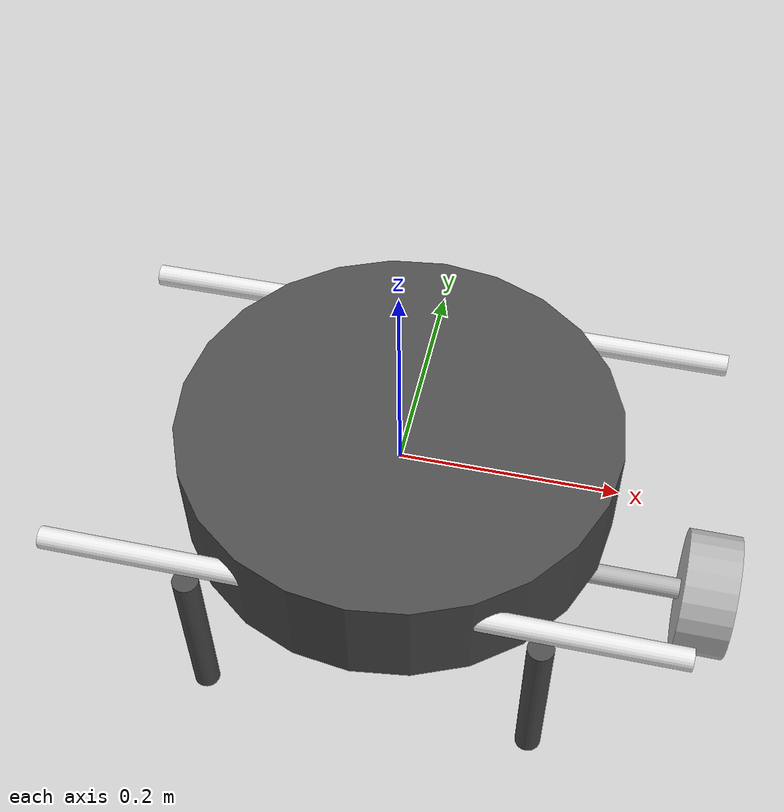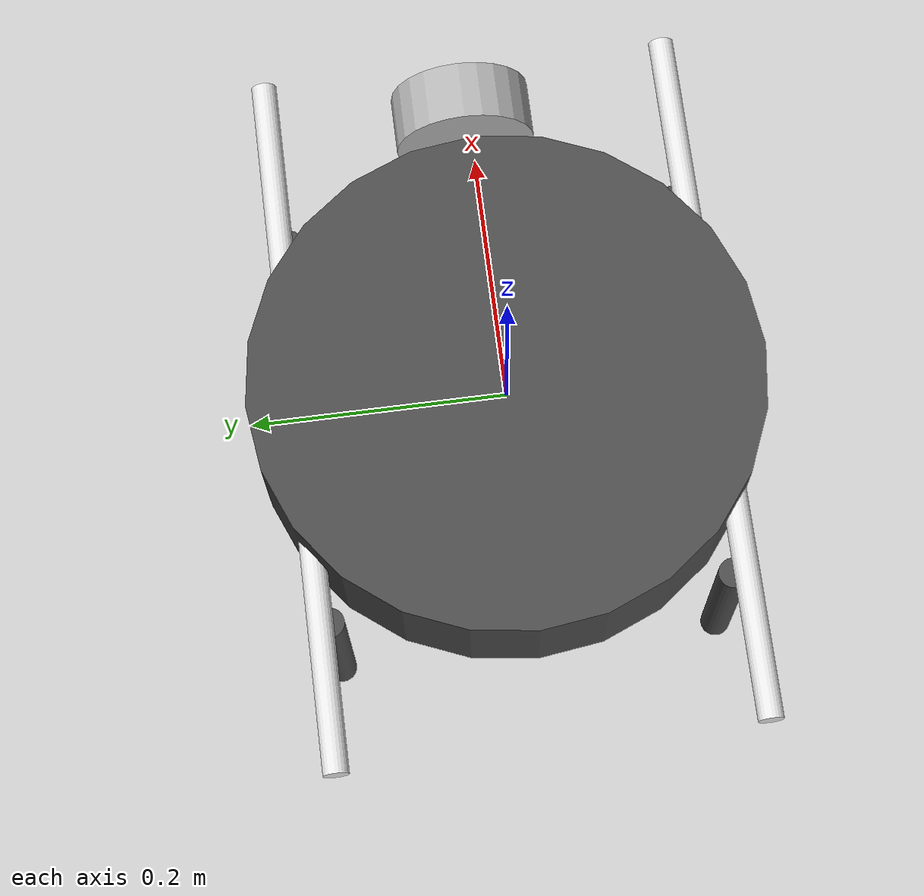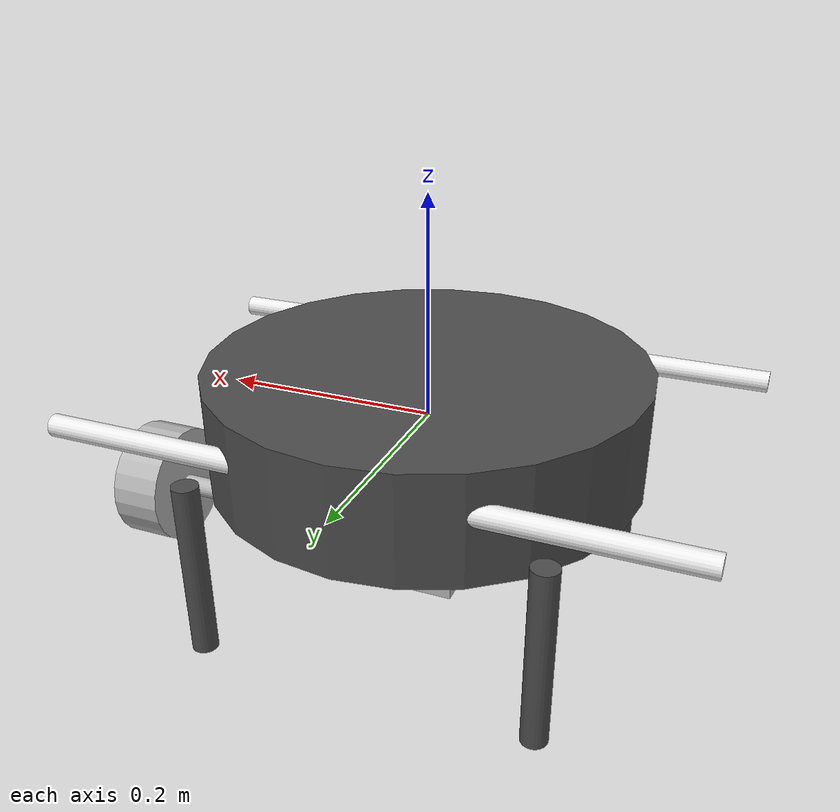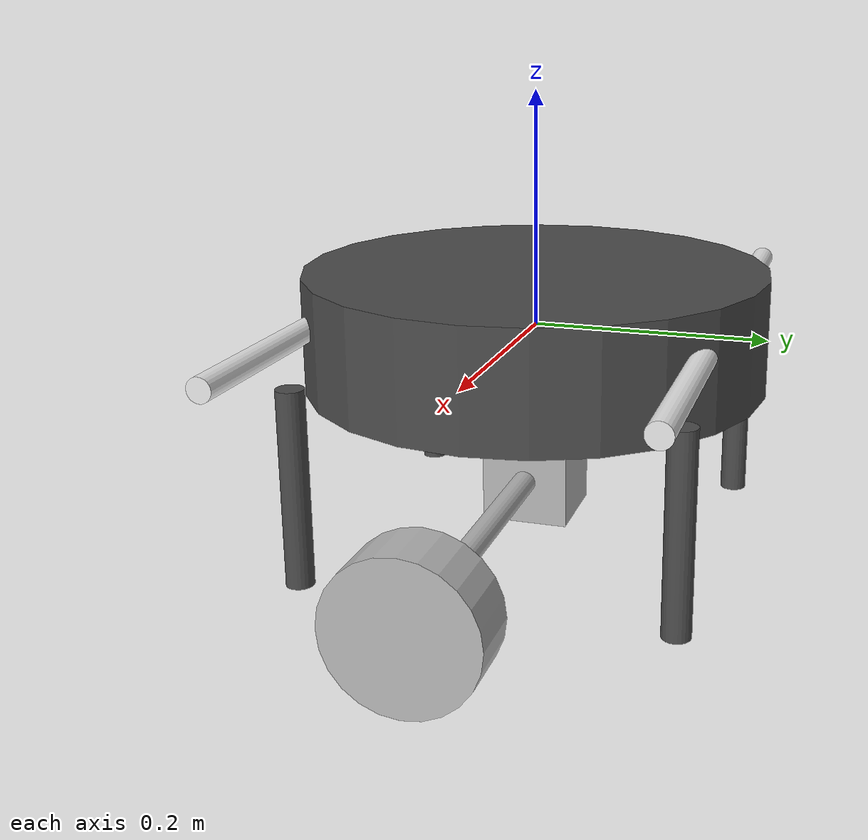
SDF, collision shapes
<?xml version="1.0" encoding="UTF-8"?>
<sdf version='1.9'>
  <model name='f450_brush'>
    <include merge='true'>
      <uri>model://f450_brush/f450_brush_base_model.sdf</uri>
    </include>
    <plugin filename="gz-sim-multicopter-motor-model-system" name="gz::sim::systems::MulticopterMotorModel">
      <jointName>prop_0_joint</jointName>
      <linkName>prop_0_link</linkName>
      <turningDirection>ccw</turningDirection>
      <timeConstantUp>0.0125</timeConstantUp>
      <timeConstantDown>0.025</timeConstantDown>
      <maxRotVelocity>1000.0</maxRotVelocity>
      <motorConstant>8.54858e-06</motorConstant>
      <momentConstant>0.016</momentConstant>
      <commandSubTopic>command/motor_speed</commandSubTopic>
      <motorNumber>0</motorNumber>
      <rotorDragCoefficient>8.06428e-05</rotorDragCoefficient>
      <rollingMomentCoefficient>1e-06</rollingMomentCoefficient>
      <rotorVelocitySlowdownSim>10</rotorVelocitySlowdownSim>
      <motorType>velocity</motorType>
    </plugin>
    <plugin filename="gz-sim-multicopter-motor-model-system" name="gz::sim::systems::MulticopterMotorModel">
      <jointName>prop_1_joint</jointName>
      <linkName>prop_1_link</linkName>
      <turningDirection>ccw</turningDirection>
      <timeConstantUp>0.0125</timeConstantUp>
      <timeConstantDown>0.025</timeConstantDown>
      <maxRotVelocity>1000.0</maxRotVelocity>
      <motorConstant>8.54858e-06</motorConstant>
      <momentConstant>0.016</momentConstant>
      <commandSubTopic>command/motor_speed</commandSubTopic>
      <motorNumber>1</motorNumber>
      <rotorDragCoefficient>8.06428e-05</rotorDragCoefficient>
      <rollingMomentCoefficient>1e-06</rollingMomentCoefficient>
      <rotorVelocitySlowdownSim>10</rotorVelocitySlowdownSim>
      <motorType>velocity</motorType>
    </plugin>
    <plugin filename="gz-sim-multicopter-motor-model-system" name="gz::sim::systems::MulticopterMotorModel">
      <jointName>prop_2_joint</jointName>
      <linkName>prop_2_link</linkName>
      <turningDirection>cw</turningDirection>
      <timeConstantUp>0.0125</timeConstantUp>
      <timeConstantDown>0.025</timeConstantDown>
      <maxRotVelocity>1000.0</maxRotVelocity>
      <motorConstant>8.54858e-06</motorConstant>
      <momentConstant>0.016</momentConstant>
      <commandSubTopic>command/motor_speed</commandSubTopic>
      <motorNumber>2</motorNumber>
      <rotorDragCoefficient>8.06428e-05</rotorDragCoefficient>
      <rollingMomentCoefficient>1e-06</rollingMomentCoefficient>
      <rotorVelocitySlowdownSim>10</rotorVelocitySlowdownSim>
      <motorType>velocity</motorType>
    </plugin>
    <plugin filename="gz-sim-multicopter-motor-model-system" name="gz::sim::systems::MulticopterMotorModel">
      <jointName>prop_3_joint</jointName>
      <linkName>prop_3_link</linkName>
      <turningDirection>cw</turningDirection>
      <timeConstantUp>0.0125</timeConstantUp>
      <timeConstantDown>0.025</timeConstantDown>
      <maxRotVelocity>1000.0</maxRotVelocity>
      <motorConstant>8.54858e-06</motorConstant>
      <momentConstant>0.016</momentConstant>
      <commandSubTopic>command/motor_speed</commandSubTopic>
      <motorNumber>3</motorNumber>
      <rotorDragCoefficient>8.06428e-05</rotorDragCoefficient>
      <rollingMomentCoefficient>1e-06</rollingMomentCoefficient>
      <rotorVelocitySlowdownSim>10</rotorVelocitySlowdownSim>
      <motorType>velocity</motorType>
    </plugin>
    <plugin filename="gz-sim-joint-controller-system" name="gz::sim::systems::JointController">
      <joint_name>brush_shaft_joint</joint_name>
      <initial_velocity>1.0</initial_velocity>
    </plugin>
  </model>
</sdf>
